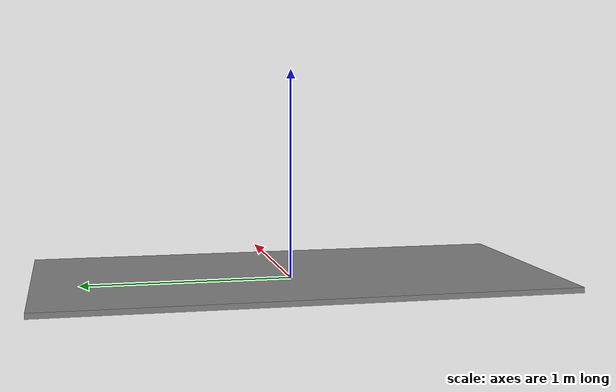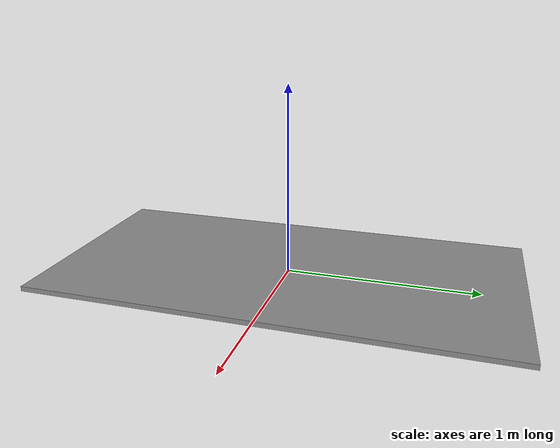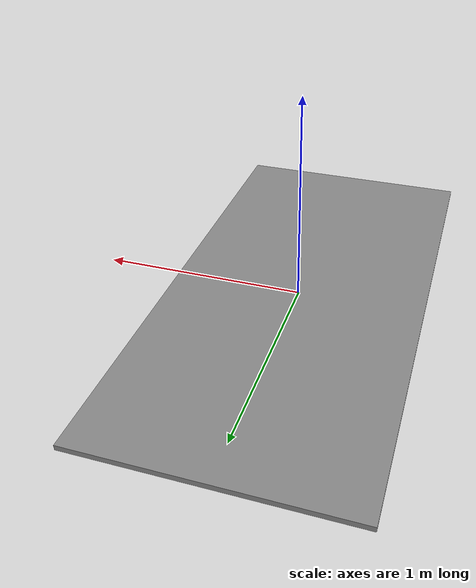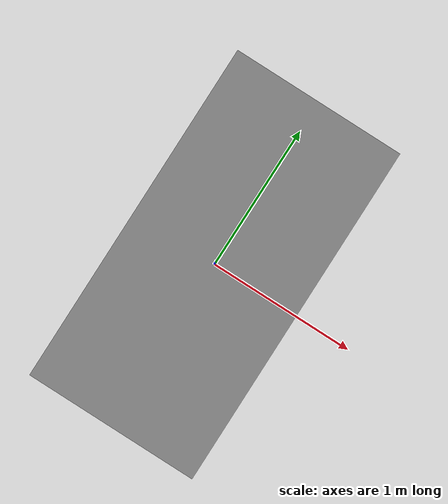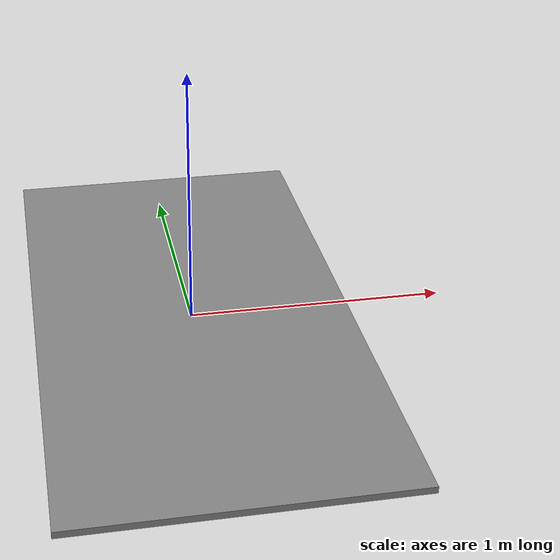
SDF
<?xml version="1.0" ?>
<sdf version="1.4">
  <model name="drc_practice_base">
    <static>true</static>
    <pose>0 0 0.0127 0 0 0</pose>
    <link name="platform">
      <collision name="collision">
        <geometry>
          <box>
            <size>1.2192 2.4384 0.0254</size>
          </box>
        </geometry>
        <surface>
          <friction>
            <ode>
              <mu>100</mu>
              <mu2>50</mu2>
            </ode>
          </friction>
        </surface>
      </collision>

      <visual name="visual">
        <geometry>
          <mesh>
            <uri>model://drc_practice_base_4x8/meshes/4x8ftbase.dae</uri>
          </mesh>
        </geometry>
      </visual>
    </link>
  </model>
</sdf>
